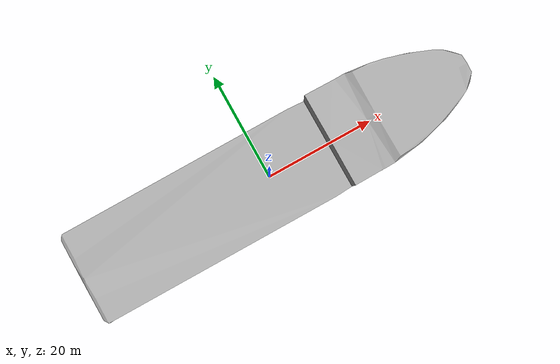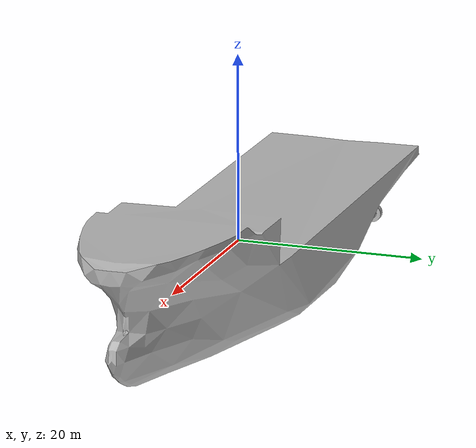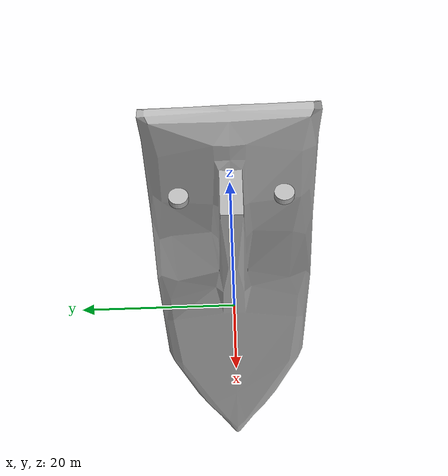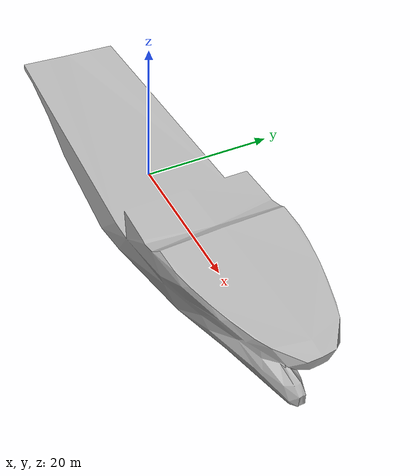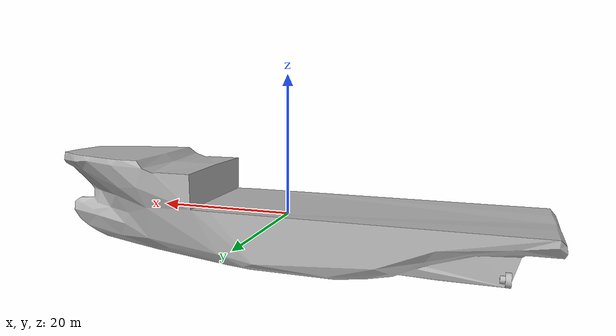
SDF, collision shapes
<?xml version="1.0" ?>
<sdf version="1.7">
  <model name="havyard">

    <link name="base_link">
      <visual name="hull">
        <geometry>
          <mesh>
            <scale>50 50 50</scale>
            <uri>meshes/hull.dae</uri>
          </mesh>
        </geometry>
      </visual>
      <visual name="hull_anchors">
        <geometry>
          <mesh>
            <scale>50 50 50</scale>
            <uri>meshes/hull_anchors.dae</uri>
          </mesh>
        </geometry>
      </visual>
      <visual name="hull_fittings">
        <geometry>
          <mesh>
            <scale>50 50 50</scale>
            <uri>meshes/hull_fittings.dae</uri>
          </mesh>
        </geometry>
      </visual>
      <visual name="main_deck">
        <geometry>
          <mesh>
            <scale>50 50 50</scale>
            <uri>meshes/main_deck.dae</uri>
          </mesh>
        </geometry>
      </visual>
      <visual name="main_deck_sides">
        <geometry>
          <mesh>
            <scale>50 50 50</scale>
            <uri>meshes/main_deck_sides.dae</uri>
          </mesh>
        </geometry>
      </visual>
      <visual name="a_deck">
        <geometry>
          <mesh>
            <scale>50 50 50</scale>
            <uri>meshes/a_deck.dae</uri>
          </mesh>
        </geometry>
      </visual>
      <visual name="b_deck">
        <geometry>
          <mesh>
            <scale>50 50 50</scale>
            <uri>meshes/b_deck.dae</uri>
          </mesh>
        </geometry>
      </visual>
      <visual name="c_deck">
        <geometry>
          <mesh>
            <scale>50 50 50</scale>
            <uri>meshes/c_deck.dae</uri>
          </mesh>
        </geometry>
      </visual>
      <visual name="wheelhouse_roof">
        <geometry>
          <mesh>
            <scale>50 50 50</scale>
            <uri>meshes/wheelhouse_roof.dae</uri>
          </mesh>
        </geometry>
      </visual>

      <!-- Leave axes visuals for debugging -->

      <collision name="hull_collision">
        <geometry>
          <mesh>
            <uri>meshes/hull_collision_x50.stl</uri>
          </mesh>
        </geometry>
      </collision>

      <inertial>
        <pose>0 0 -0.5 0 0 0</pose>
        <mass>3850000</mass>
        <inertia>
          <ixx>194548849</ixx>
          <ixy>0.0</ixy>
          <ixz>0.0</ixz>
          <iyy>2210809763</iyy>
          <iyz>0.0</iyz>
          <izz>2235396753</izz>
        </inertia>
      </inertial>
    </link>

    <!-- Engines -->
    <link name="left_engine_link">
      <pose>-30 5 -5 0 0 0</pose>
      <visual name="visual">
        <pose>0 0 0 0 1.570796 0</pose>
        <geometry>
          <cylinder>
            <length>1</length>
            <radius>0.5</radius>
          </cylinder>
        </geometry>
      </visual>
      <collision name="collision">
        <pose>0 0 0 0 1.570796 0</pose>
        <geometry>
          <cylinder>
            <length>1</length>
            <radius>0.5</radius>
          </cylinder>
        </geometry>
      </collision>
      <inertial>
        <mass>960</mass>
        <inertia>
          <ixx>56.91136</ixx>
          <ixy>0</ixy>
          <iyy>58.312</iyy>
          <iyz>0</iyz>
          <izz>5</izz>
        </inertia>
      </inertial>
    </link>
    <joint name="left_engine_joint" type="revolute">
      <parent>base_link</parent>
      <child>left_engine_link</child>
      <axis>
        <xyz>0 0 1</xyz>
        <limit>
          <lower>-0.7853981633974483</lower>
          <upper>0.7853981633974483</upper>
        </limit>
        <dynamics>
          <damping>0.1</damping>
        </dynamics>
      </axis>
    </joint>

    <link name="right_engine_link">
      <pose>-30 -5 -5 0 0 0</pose>
      <visual name="visual">
        <pose>0 0 0 0 1.570796 0</pose>
        <geometry>
          <cylinder>
            <length>1</length>
            <radius>0.5</radius>
          </cylinder>
        </geometry>
      </visual>
      <collision name="collision">
        <pose>0 0 0 0 1.570796 0</pose>
        <geometry>
          <cylinder>
            <length>1</length>
            <radius>0.5</radius>
          </cylinder>
        </geometry>
      </collision>
      <inertial>
        <mass>960</mass>
        <inertia>
          <ixx>56.91136</ixx>
          <ixy>0</ixy>
          <iyy>58.312</iyy>
          <iyz>0</iyz>
          <izz>5</izz>
        </inertia>
      </inertial>
    </link>
    <joint name="right_engine_joint" type="revolute">
      <parent>base_link</parent>
      <child>right_engine_link</child>
      <axis>
        <xyz>0 0 1</xyz>
        <limit>
          <lower>-0.7853981633974483</lower>
          <upper>0.7853981633974483</upper>
        </limit>
        <dynamics>
          <damping>0.1</damping>
        </dynamics>
      </axis>
    </joint>

    <link name="left_propeller_link">
      <pose relative_to="left_propeller_joint">-0.5 0 0 0 0 0</pose>
      <visual name="visual">
        <geometry>
          <mesh>
            <scale>4 4 4</scale>
            <uri>meshes/propeller.dae</uri>
          </mesh>
        </geometry>
      </visual>
      <collision name="collision">
        <pose>0 0 0 0 1.570796 0</pose>
        <geometry>
          <cylinder>
            <length>0.72</length>
            <radius>0.96</radius>
          </cylinder>
        </geometry>
      </collision>
      <inertial>
        <mass>32</mass>
        <inertia>
          <ixx>0.54688</ixx>
          <ixy>0</ixy>
          <iyy>0.54688</iyy>
          <iyz>0</iyz>
          <izz>0.9216</izz>
        </inertia>
      </inertial>
    </link>
    <joint name="left_propeller_joint" type="revolute">
      <pose relative_to="left_engine_link">0 0 0 0 0 0</pose>
      <parent>left_engine_link</parent>
      <child>left_propeller_link</child>
      <axis>
        <xyz>1 0 0</xyz>
        <dynamics>
          <damping>0.01</damping>
        </dynamics>
        <limit>
          <lower>-1e+16</lower>
          <upper>1e+16</upper>
        </limit>
      </axis>
    </joint>

    <link name="right_propeller_link">
      <pose relative_to="right_propeller_joint">-0.5 0 0 0 0 0</pose>
      <visual name="visual">
        <geometry>
          <mesh>
            <scale>4 4 4</scale>
            <uri>meshes/propeller.dae</uri>
          </mesh>
        </geometry>
      </visual>
      <collision name="collision">
        <pose>0 0 0 0 1.570796 0</pose>
        <geometry>
          <cylinder>
            <length>0.72</length>
            <radius>0.96</radius>
          </cylinder>
        </geometry>
      </collision>
      <inertial>
        <mass>32</mass>
        <inertia>
          <ixx>0.54688</ixx>
          <ixy>0</ixy>
          <iyy>0.54688</iyy>
          <iyz>0</iyz>
          <izz>0.9216</izz>
        </inertia>
      </inertial>
    </link>
    <joint name="right_propeller_joint" type="revolute">
      <pose relative_to="right_engine_link">0 0 0 0 0 0</pose>
      <parent>right_engine_link</parent>
      <child>right_propeller_link</child>
      <axis>
        <xyz>1 0 0</xyz>
        <dynamics>
          <damping>0.01</damping>
        </dynamics>
        <limit>
          <lower>-1e+16</lower>
          <upper>1e+16</upper>
        </limit>
      </axis>
    </joint>

    <!-- Sensors -->
    <link name="imu_link">
      <inertial>
        <pose>0 0 0 0 0 0</pose>
        <mass>0.15</mass>
        <inertia>
          <ixx>0.00001</ixx>
          <ixy>0</ixy>
          <ixz>0</ixz>
          <iyy>0.00002</iyy>
          <iyz>0</iyz>
          <izz>0.00002</izz>
        </inertia>
      </inertial>
      <sensor name="imu_sensor" type="imu">
        <pose>0 0 0 3.141593 0 0</pose>
        <always_on>1</always_on>
        <update_rate>1000.0</update_rate>
      </sensor>
    </link>
    <joint name="imu_joint" type="revolute">
      <child>imu_link</child>
      <parent>base_link</parent>
      <axis>
        <xyz>0 0 1</xyz>
        <limit>
          <lower>0</lower>
          <upper>0</upper>
          <effort>0</effort>
          <velocity>0</velocity>
        </limit>
        <dynamics>
          <damping>1.0</damping>
        </dynamics>
      </axis>
    </joint>

    <!-- Joint state and force plugins -->
    <plugin filename="libignition-gazebo-joint-state-publisher-system.so"
      name="ignition::gazebo::systems::JointStatePublisher">
    </plugin>
    <plugin filename="libignition-gazebo-apply-joint-force-system.so"
      name="ignition::gazebo::systems::ApplyJointForce">
      <joint_name>left_engine_joint</joint_name>
    </plugin>
    <plugin filename="libignition-gazebo-apply-joint-force-system.so"
      name="ignition::gazebo::systems::ApplyJointForce">
      <joint_name>right_engine_joint</joint_name>
    </plugin>

    <!-- Thruster plugins -->
    <plugin
        filename="ignition-gazebo-thruster-system"
        name="ignition::gazebo::systems::Thruster">
      <namespace>wam-v</namespace>
      <joint_name>left_propeller_joint</joint_name>
      <use_angvel_cmd>0</use_angvel_cmd>
      <fluid_density>1000</fluid_density>
      <propeller_diameter>1.92</propeller_diameter>
      <thrust_coefficient>-0.5</thrust_coefficient>
      <velocity_control>1</velocity_control>
      <max_thrust_cmd>2000000.0</max_thrust_cmd>
      <min_thrust_cmd>-2000000.0</min_thrust_cmd>
    </plugin>
    <plugin
        filename="ignition-gazebo-thruster-system"
        name="ignition::gazebo::systems::Thruster">
      <namespace>wam-v</namespace>
      <joint_name>right_propeller_joint</joint_name>
      <use_angvel_cmd>0</use_angvel_cmd>
      <fluid_density>1000</fluid_density>
      <propeller_diameter>1.92</propeller_diameter>
      <thrust_coefficient>0.5</thrust_coefficient>
      <velocity_control>1</velocity_control>
      <max_thrust_cmd>2000000.0</max_thrust_cmd>
      <min_thrust_cmd>-2000000.0</min_thrust_cmd>
    </plugin>

    <!-- Hydrodynamics plugin -->
    <plugin
      filename="ignition-marine1-hydrodynamics-system"
      name="ignition::gazebo::systems::Hydrodynamics">
      <damping_on>1</damping_on>
      <viscous_drag_on>1</viscous_drag_on>
      <pressure_drag_on>1</pressure_drag_on>
      <cDampL1>1.0E-3</cDampL1>
      <cDampL2>1.0E-3</cDampL2>
      <cDampR1>1.0E+7</cDampR1>
      <cDampR2>1.0E+7</cDampR2>
      <cPDrag1>1.0E+2</cPDrag1>
      <cPDrag2>1.0E+2</cPDrag2>
      <fPDrag>0.4</fPDrag>
      <cSDrag1>1.0E+2</cSDrag1>
      <cSDrag2>1.0E+2</cSDrag2>
      <fSDrag>0.4</fSDrag>
      <vRDrag>1.0</vRDrag>
    </plugin>

    <!-- ArduPilot plugin -->
    <plugin name="ArduPilotPlugin" filename="libArduPilotPlugin.so">
      <fdm_addr>127.0.0.1</fdm_addr>
      <fdm_port_in>9012</fdm_port_in>
      <connectionTimeoutMaxCount>5</connectionTimeoutMaxCount>
      <lock_step>1</lock_step>
      <modelXYZToAirplaneXForwardZDown>0 0 0 3.141593 0 0</modelXYZToAirplaneXForwardZDown>
      <gazeboXYZToNED>0 0 0 3.141593 0 0</gazeboXYZToNED>
      <imuName>imu_sensor</imuName>

      <!--
        SERVO1_FUNCTION 26 (GroundSteering)
      -->
      <control channel="0">
        <jointName>left_engine_joint</jointName>
        <useForce>1</useForce>
        <multiplier>1.5707963267948966</multiplier>
        <offset>-0.5</offset>
        <servo_min>1000</servo_min>
        <servo_max>2000</servo_max>
        <type>POSITION</type>
        <p_gain>200000.0</p_gain>
        <i_gain>0</i_gain>
        <d_gain>100</d_gain>
        <i_max>-1</i_max>
        <i_min>0</i_min>
        <cmd_max>1000000.0</cmd_max>
        <cmd_min>-1000000.0</cmd_min>
      </control>
      <control channel="0">
        <jointName>right_engine_joint</jointName>
        <useForce>1</useForce>
        <multiplier>1.5707963267948966</multiplier>
        <offset>-0.5</offset>
        <servo_min>1000</servo_min>
        <servo_max>2000</servo_max>
        <type>POSITION</type>
        <p_gain>200000.0</p_gain>
        <i_gain>0</i_gain>
        <d_gain>100</d_gain>
        <i_max>-1</i_max>
        <i_min>0</i_min>
        <cmd_max>1000000.0</cmd_max>
        <cmd_min>-1000000.0</cmd_min>
      </control>

      <!--
        SERVO3_FUNCTION 70 (Throttle)
      -->
      <control channel="2">
        <jointName>left_propeller_joint</jointName>
        <useForce>1</useForce>
        <multiplier>2000000</multiplier>
        <offset>-0.5</offset>
        <servo_min>1000</servo_min>
        <servo_max>2000</servo_max>
        <type>COMMAND</type>
        <cmd_topic>/model/wam-v/joint/left_propeller_joint/cmd_thrust</cmd_topic>
      </control>
      <control channel="2">
        <jointName>right_propeller_joint</jointName>
        <useForce>1</useForce>
        <multiplier>2000000</multiplier>
        <offset>-0.5</offset>
        <servo_min>1000</servo_min>
        <servo_max>2000</servo_max>
        <type>COMMAND</type>
        <cmd_topic>/model/wam-v/joint/right_propeller_joint/cmd_thrust</cmd_topic>
      </control>
    </plugin>

  </model>
</sdf>
